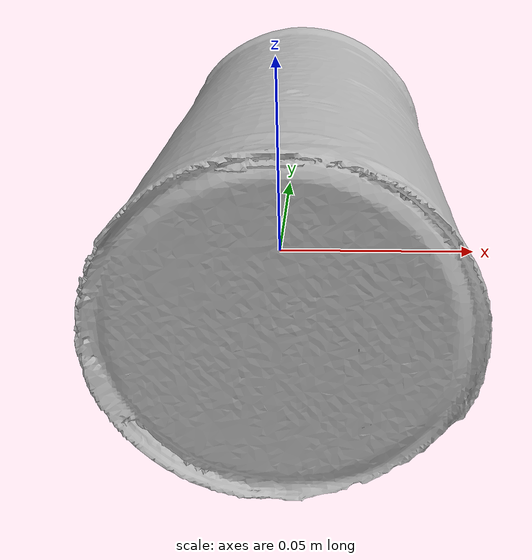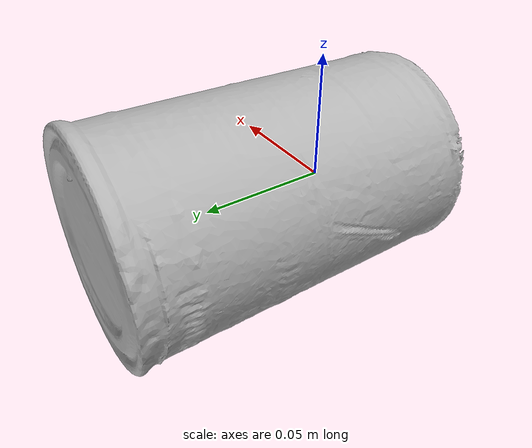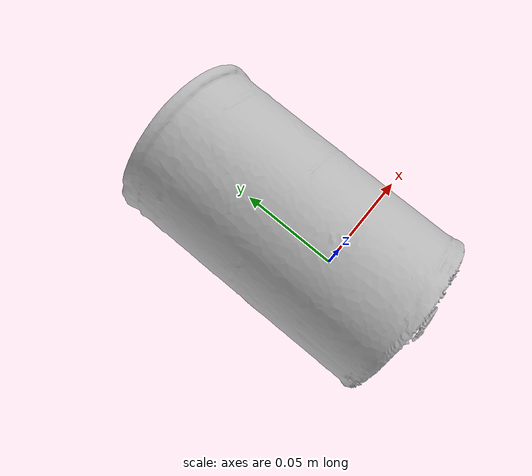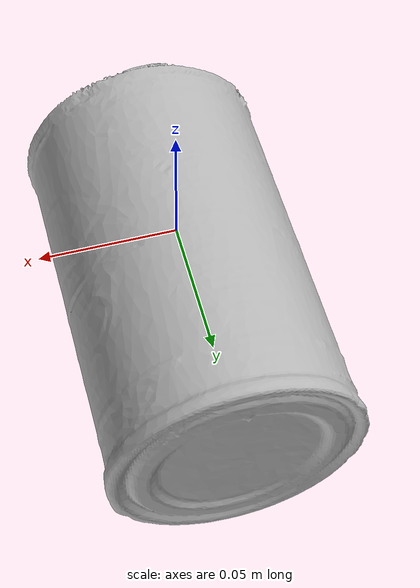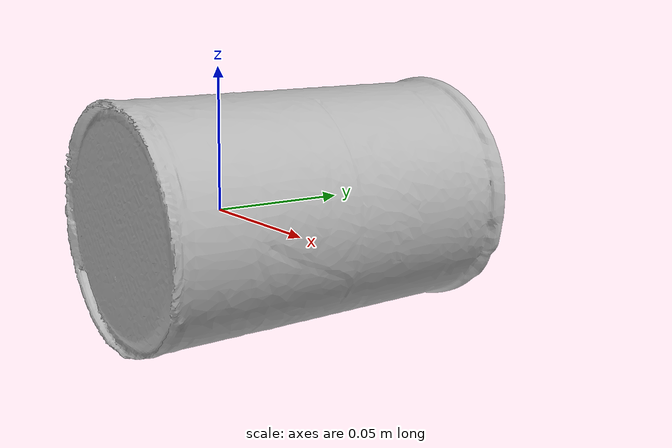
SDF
<?xml version='1.0'?>
<sdf version="1.4">
  <model name="InstantIceCoffee">
    <static>false</static>
    <link name="link">
      <inertial>
        <pose>0.0030780269277153934 0.025858443043919616 -0.0008674771393142644 -1.6043465425072034 -1.298463546024604 -3.1137615740359466</pose>
        <mass>0.08028412693172876</mass>
        <inertia>
          <ixx>0.00016259416593539992</ixx>
          <ixy>-2.9722670644490732e-21</ixy>
          <ixz>1.8064138581778238e-20</ixz>
          <iyy>0.00016211235993015692</iyy>
          <iyz>4.350111977931527e-21</iyz>
          <izz>7.486368165142346e-05</izz>
        </inertia>
      </inertial>
      <collision name="collision">
        <geometry>
          <mesh>
            <!-- Use a downsampled mesh for collisions -->
            <uri>model:///InstantIceCoffee/InstantIceCoffee_250_collision.obj</uri>
	        </mesh>
        </geometry>
        <surface>
      </surface>
      </collision>
      <visual name="visual">
        <geometry>
          <mesh>
            <uri>model:///InstantIceCoffee/InstantIceCoffee_25k_tex.obj</uri>
	        </mesh>
        </geometry>
        <material>
          <script>
            <uri>model:///InstantIceCoffee/InstantIceCoffee.material</uri>
            <name>InstantIceCoffee</name>
          </script>
        </material>
      </visual>
    </link>
  </model>
</sdf>
